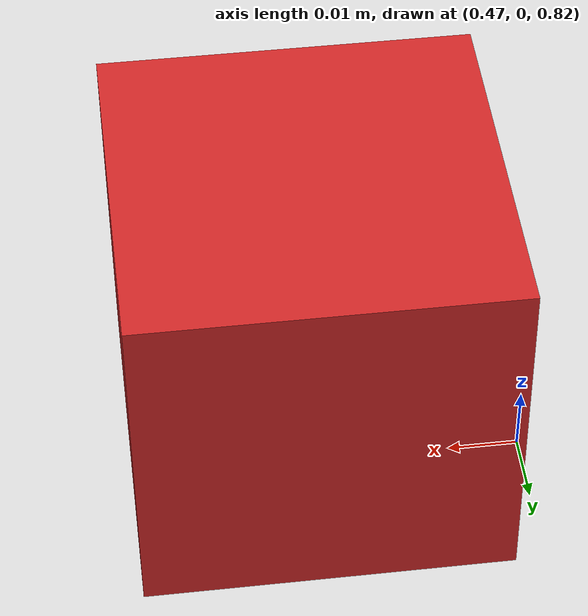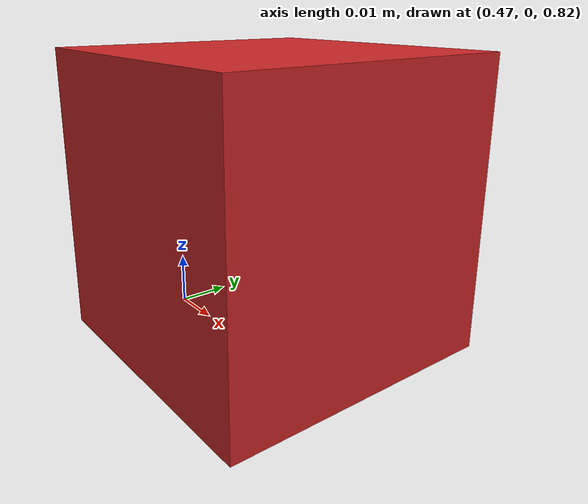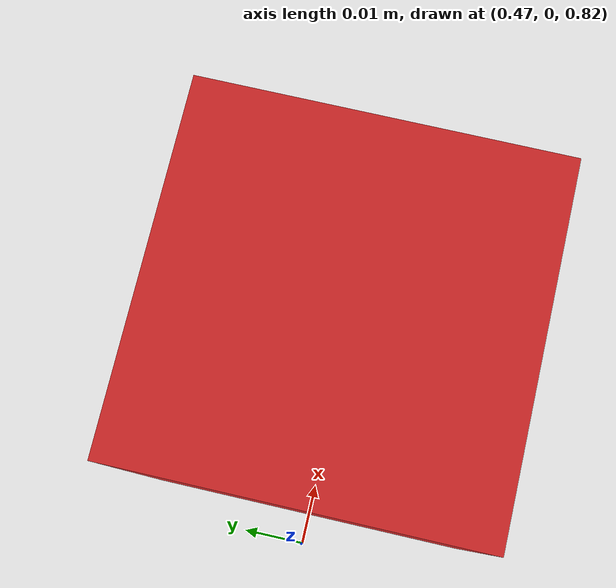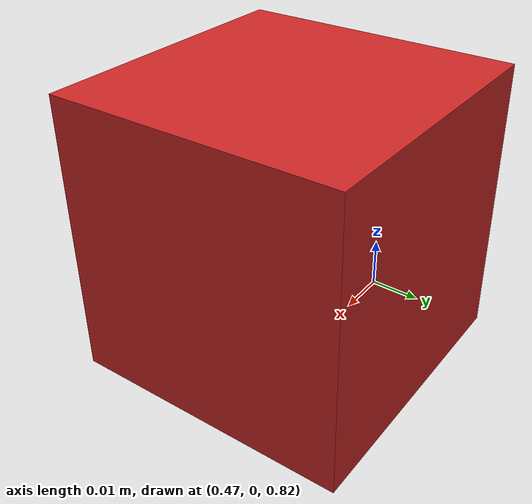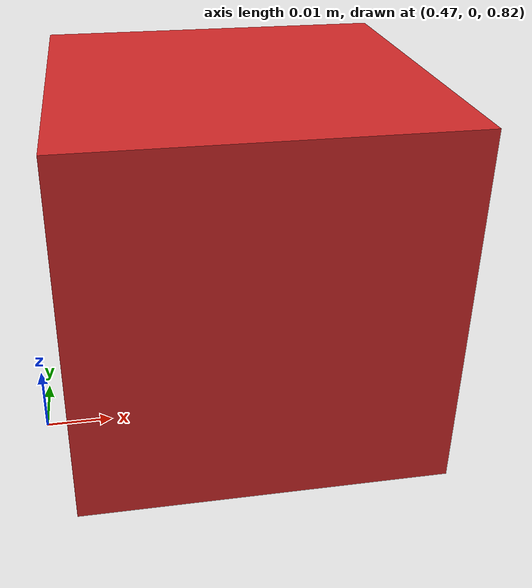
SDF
<?xml version="1.0" ?>
<sdf version="1.6">
  <world name="pick_place_world">
    <include>
      <uri>model://ground_plane</uri>
    </include>

    <include>
      <uri>model://sun</uri>
    </include>

    <physics type="ode">
      <real_time_update_rate>1000.0</real_time_update_rate>
      <max_step_size>0.001</max_step_size>
      <real_time_factor>1</real_time_factor>
      <ode>
        <solver>
          <type>quick</type>
          <iters>150</iters>
          <precon_iters>0</precon_iters>
          <sor>1.400000</sor>
          <use_dynamic_moi_rescaling>1</use_dynamic_moi_rescaling>
        </solver>
        <constraints>
          <cfm>0.00001</cfm>
          <erp>0.2</erp>
          <contact_max_correcting_vel>2000.000000</contact_max_correcting_vel>
          <contact_surface_layer>0.01000</contact_surface_layer>
        </constraints>
      </ode>
    </physics>

    <gui fullscreen="0">
      <camera name="user_camera">
        <pose>4.0 -3.0 2.0 0 0.275643 2.356190</pose>
        <view_controller>orbit</view_controller>
      </camera>
    </gui>

    <!-- A simple box that will be spawned as one of the objects to pick -->
    <model name="box1">
      <pose>0.5 0 0.85 0 0 0</pose>
      <link name="link">
        <collision name="collision">
          <geometry>
            <box>
              <size>0.05 0.05 0.05</size>
            </box>
          </geometry>
        </collision>
        <visual name="visual">
          <geometry>
            <box>
              <size>0.05 0.05 0.05</size>
            </box>
          </geometry>
          <material>
            <script>
              <uri>file://media/materials/scripts/gazebo.material</uri>
              <name>Gazebo/Red</name>
            </script>
          </material>
        </visual>
        <inertial>
          <mass>0.1</mass>
          <inertia>
            <ixx>0.000083</ixx>
            <ixy>0.0</ixy>
            <ixz>0.0</ixz>
            <iyy>0.000083</iyy>
            <iyz>0.0</iyz>
            <izz>0.000083</izz>
          </inertia>
        </inertial>
      </link>
    </model>
  </world>
</sdf>
